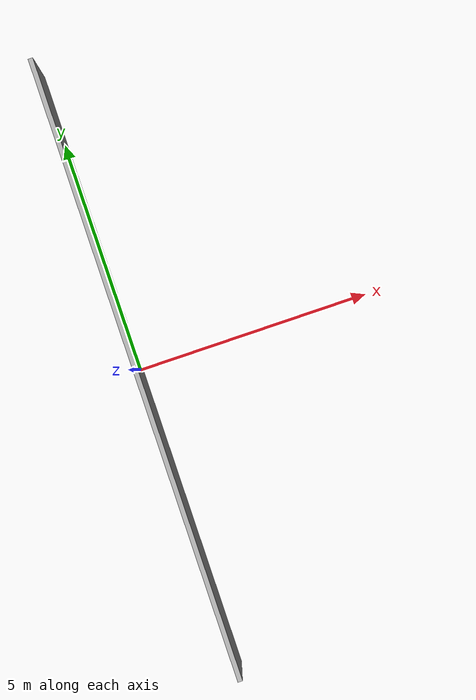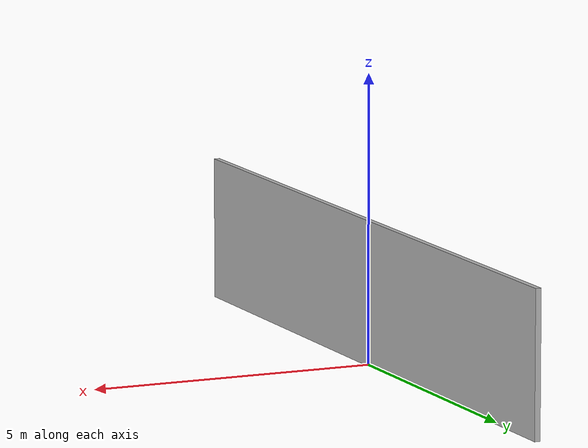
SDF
<?xml version="1.0" ?>
<sdf version="1.5">
  <model name="wall_west">
    <static>true</static>
    <link name="link">
      <pose>0 0 1.25 0 0 1.57</pose>

      <collision name="collision">
        <geometry>
          <box>
            <size>13 0.1 2.5</size>
          </box>
        </geometry>
      </collision>

      <visual name="visual">
        <geometry>
          <box>
            <size>13 0.1 2.5</size>
          </box>
        </geometry>
        <material>
          <script>
            <uri>../../media/materials/scripts/my.material</uri>
            <name>wall_west</name>
          </script>
        </material>
      </visual>

    </link>
  </model>
</sdf>
